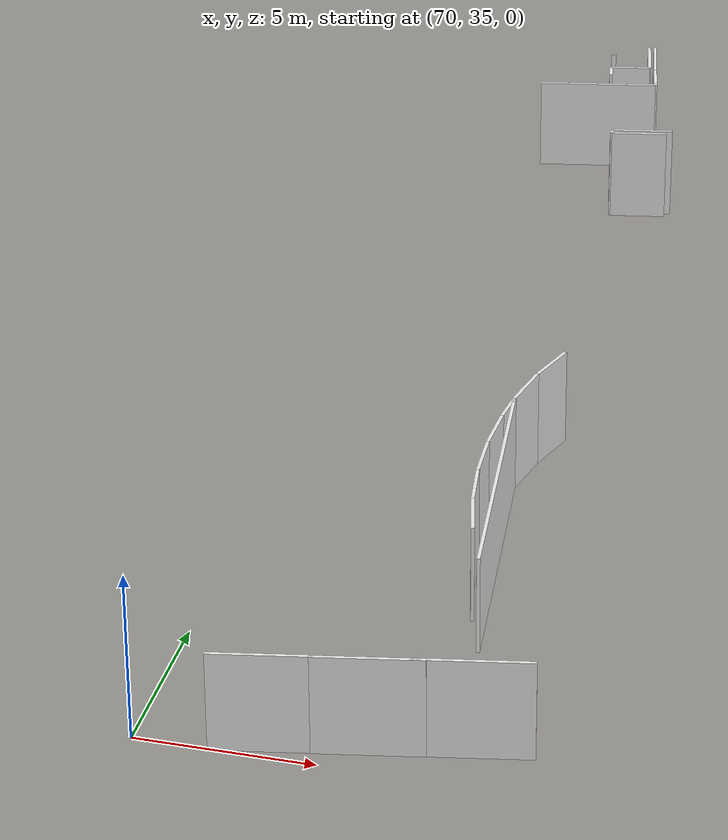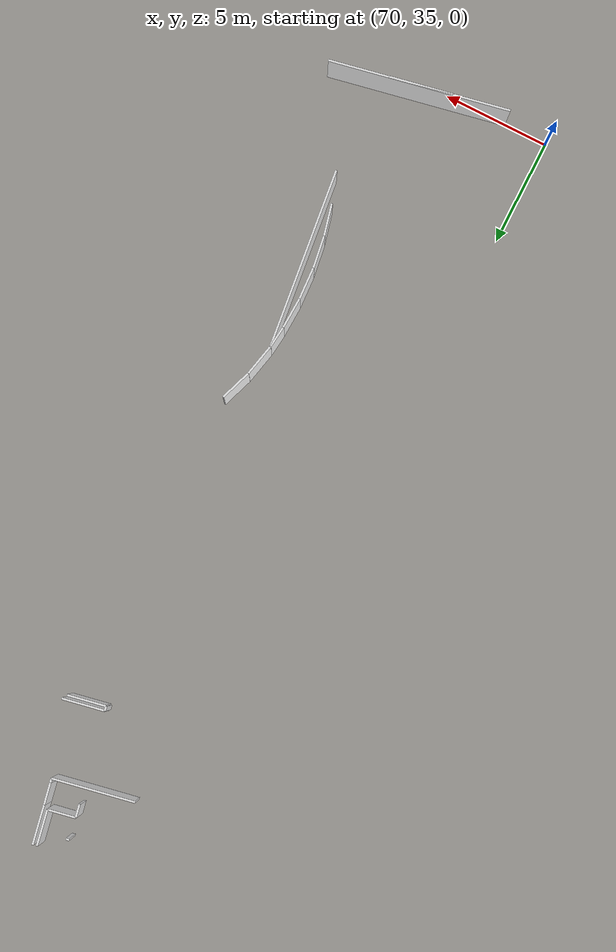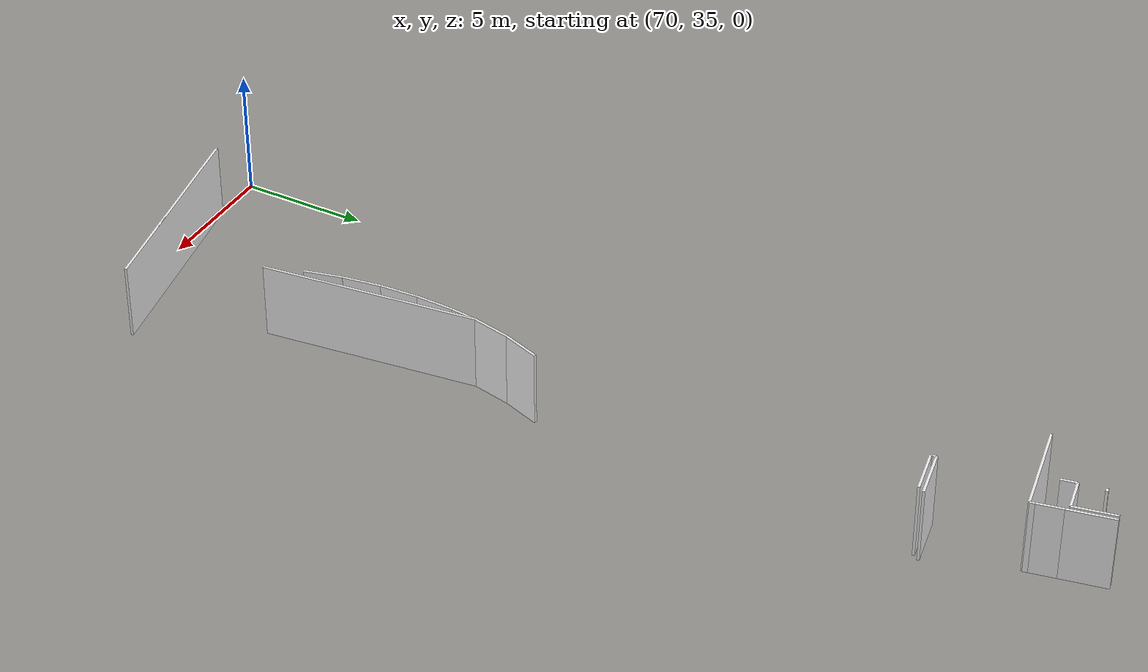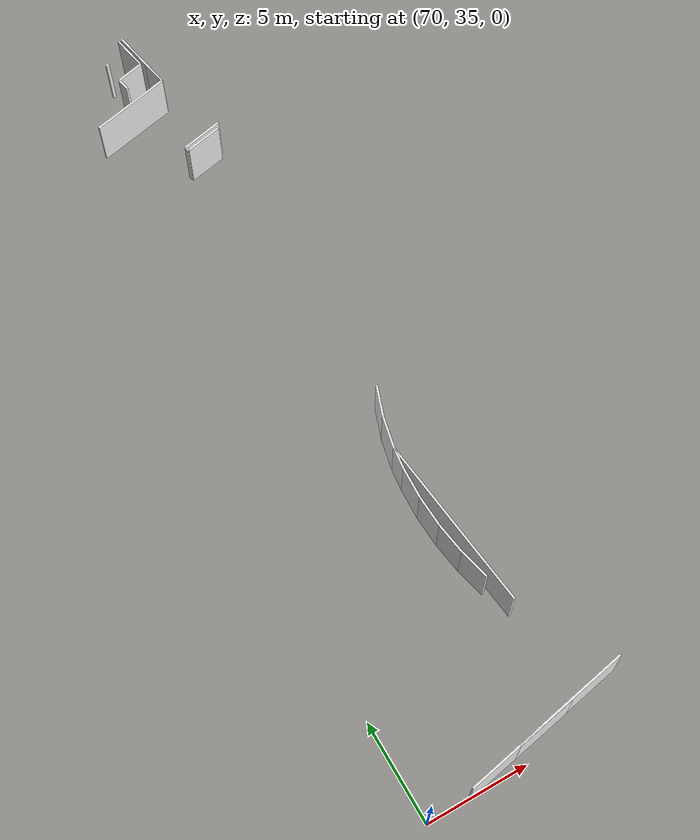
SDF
<sdf version="1.6">
 <world name="default">
  <model name="wall_74.9_72.7_1.5">
   <static>true</static>
   <pose>74.86499999999069 72.69500000006519 1.5 0 0 -2.944197095083166</pose>
   <link name="link">
    <visual name="visual">
     <geometry><box><size>0.15297058539043204 0.1 3</size></box></geometry>
     <material>
      <script><uri>file://media/materials/scripts/gazebo.material</uri><name>Gazebo/White</name></script>
     </material>
    </visual>
    <collision name="collision"><geometry><box><size>0.15297058539043204 0.1 3</size></box></geometry></collision>
   </link>
  </model>
  <model name="wall_75.0_71.4_1.5">
   <static>true</static>
   <pose>75.03999999997905 71.40500000002794 1.5 0 0 1.7714492040023821</pose>
   <link name="link">
    <visual name="visual">
     <geometry><box><size>0.6020797292489833 0.1 3</size></box></geometry>
     <material>
      <script><uri>file://media/materials/scripts/gazebo.material</uri><name>Gazebo/White</name></script>
     </material>
    </visual>
    <collision name="collision"><geometry><box><size>0.6020797292489833 0.1 3</size></box></geometry></collision>
   </link>
  </model>
  <model name="wall_75.6_71.8_1.5">
   <static>true</static>
   <pose>75.61499999999069 71.82500000018626 1.5 0 0 0.1943652660922386</pose>
   <link name="link">
    <visual name="visual">
     <geometry><box><size>1.2943724348298333 0.1 3</size></box></geometry>
     <material>
      <script><uri>file://media/materials/scripts/gazebo.material</uri><name>Gazebo/White</name></script>
     </material>
    </visual>
    <collision name="collision"><geometry><box><size>1.2943724348298333 0.1 3</size></box></geometry></collision>
   </link>
  </model>
  <model name="wall_76.1_72.8_1.5">
   <static>true</static>
   <pose>76.08999999999651 72.75500000012107 1.5 0 0 1.7669971441026713</pose>
   <link name="link">
    <visual name="visual">
     <geometry><box><size>1.6414932225216863 0.1 3</size></box></geometry>
     <material>
      <script><uri>file://media/materials/scripts/gazebo.material</uri><name>Gazebo/White</name></script>
     </material>
    </visual>
    <collision name="collision"><geometry><box><size>1.6414932225216863 0.1 3</size></box></geometry></collision>
   </link>
  </model>
  <model name="wall_76.3_72.7_1.5">
   <static>true</static>
   <pose>76.2949999999837 72.71999999997206 1.5 0 0 -1.374493662723798</pose>
   <link name="link">
    <visual name="visual">
     <geometry><box><size>1.7944637084198858 0.1 3</size></box></geometry>
     <material>
      <script><uri>file://media/materials/scripts/gazebo.material</uri><name>Gazebo/White</name></script>
     </material>
    </visual>
    <collision name="collision"><geometry><box><size>1.7944637084198858 0.1 3</size></box></geometry></collision>
   </link>
  </model>
  <model name="wall_76.6_71.3_1.5">
   <static>true</static>
   <pose>76.56999999997788 71.3499999998603 1.5 0 0 -1.3694792184051279</pose>
   <link name="link">
    <visual name="visual">
     <geometry><box><size>1.0001999799880765 0.1 3</size></box></geometry>
     <material>
      <script><uri>file://media/materials/scripts/gazebo.material</uri><name>Gazebo/White</name></script>
     </material>
    </visual>
    <collision name="collision"><geometry><box><size>1.0001999799880765 0.1 3</size></box></geometry></collision>
   </link>
  </model>
  <model name="wall_76.7_70.8_1.5">
   <static>true</static>
   <pose>76.69000000000233 70.76499999989755 1.5 0 0 -1.3633001001126588</pose>
   <link name="link">
    <visual name="visual">
     <geometry><box><size>0.19416487834246976 0.1 3</size></box></geometry>
     <material>
      <script><uri>file://media/materials/scripts/gazebo.material</uri><name>Gazebo/White</name></script>
     </material>
    </visual>
    <collision name="collision"><geometry><box><size>0.19416487834246976 0.1 3</size></box></geometry></collision>
   </link>
  </model>
  <model name="wall_76.9_67.2_1.5">
   <static>true</static>
   <pose>76.94999999998254 67.18999999994412 1.5 0 0 -2.9481653269346513</pose>
   <link name="link">
    <visual name="visual">
     <geometry><box><size>1.976866206885053 0.1 3</size></box></geometry>
     <material>
      <script><uri>file://media/materials/scripts/gazebo.material</uri><name>Gazebo/White</name></script>
     </material>
    </visual>
    <collision name="collision"><geometry><box><size>1.976866206885053 0.1 3</size></box></geometry></collision>
   </link>
  </model>
  <model name="wall_74.8_70.3_1.5">
   <static>true</static>
   <pose>74.83999999999651 70.30000000004657 1.5 0 0 0.19533794952017633</pose>
   <link name="link">
    <visual name="visual">
     <geometry><box><size>3.8125057377015654 0.1 3</size></box></geometry>
     <material>
      <script><uri>file://media/materials/scripts/gazebo.material</uri><name>Gazebo/White</name></script>
     </material>
    </visual>
    <collision name="collision"><geometry><box><size>3.8125057377015654 0.1 3</size></box></geometry></collision>
   </link>
  </model>
  <model name="wall_76.0_66.9_1.5">
   <static>true</static>
   <pose>76.00500000000466 66.89999999990687 1.5 0 0 -1.3258176636680326</pose>
   <link name="link">
    <visual name="visual">
     <geometry><box><size>0.2061552814728801 0.1 3</size></box></geometry>
     <material>
      <script><uri>file://media/materials/scripts/gazebo.material</uri><name>Gazebo/White</name></script>
     </material>
    </visual>
    <collision name="collision"><geometry><box><size>0.2061552814728801 0.1 3</size></box></geometry></collision>
   </link>
  </model>
  <model name="wall_76.9_67.0_1.5">
   <static>true</static>
   <pose>76.90000000002328 66.96999999997206 1.5 0 0 0.19297081014186676</pose>
   <link name="link">
    <visual name="visual">
     <geometry><box><size>1.77290721702601 0.1 3</size></box></geometry>
     <material>
      <script><uri>file://media/materials/scripts/gazebo.material</uri><name>Gazebo/White</name></script>
     </material>
    </visual>
    <collision name="collision"><geometry><box><size>1.77290721702601 0.1 3</size></box></geometry></collision>
   </link>
  </model>
  <model name="wall_77.4_51.6_1.5">
   <static>true</static>
   <pose>77.40499999999884 51.610000000102445 1.5 0 0 -1.9111782654188452</pose>
   <link name="link">
    <visual name="visual">
     <geometry><box><size>1.527645246707885 0.1 3</size></box></geometry>
     <material>
      <script><uri>file://media/materials/scripts/gazebo.material</uri><name>Gazebo/White</name></script>
     </material>
    </visual>
    <collision name="collision"><geometry><box><size>1.527645246707885 0.1 3</size></box></geometry></collision>
   </link>
  </model>
  <model name="wall_77.0_50.1_1.5">
   <static>true</static>
   <pose>76.98500000001513 50.140000000130385 1.5 0 0 -1.7873466317813498</pose>
   <link name="link">
    <visual name="visual">
     <geometry><box><size>1.5358710883439264 0.1 3</size></box></geometry>
     <material>
      <script><uri>file://media/materials/scripts/gazebo.material</uri><name>Gazebo/White</name></script>
     </material>
    </visual>
    <collision name="collision"><geometry><box><size>1.5358710883439264 0.1 3</size></box></geometry></collision>
   </link>
  </model>
  <model name="wall_76.8_48.9_1.5">
   <static>true</static>
   <pose>76.76000000000931 48.875 1.5 0 0 -1.6867783112416597</pose>
   <link name="link">
    <visual name="visual">
     <geometry><box><size>1.0369667306794703 0.1 3</size></box></geometry>
     <material>
      <script><uri>file://media/materials/scripts/gazebo.material</uri><name>Gazebo/White</name></script>
     </material>
    </visual>
    <collision name="collision"><geometry><box><size>1.0369667306794703 0.1 3</size></box></geometry></collision>
   </link>
  </model>
  <model name="wall_76.7_47.6_1.5">
   <static>true</static>
   <pose>76.6700000000128 47.61499999999069 1.5 0 0 -1.6110430385750105</pose>
   <link name="link">
    <visual name="visual">
     <geometry><box><size>1.4912075641164553 0.1 3</size></box></geometry>
     <material>
      <script><uri>file://media/materials/scripts/gazebo.material</uri><name>Gazebo/White</name></script>
     </material>
    </visual>
    <collision name="collision"><geometry><box><size>1.4912075641164553 0.1 3</size></box></geometry></collision>
   </link>
  </model>
  <model name="wall_76.7_46.1_1.5">
   <static>true</static>
   <pose>76.67999999999302 46.11499999999069 1.5 0 0 -1.5178656809449116</pose>
   <link name="link">
    <visual name="visual">
     <geometry><box><size>1.5121177205246188 0.1 3</size></box></geometry>
     <material>
      <script><uri>file://media/materials/scripts/gazebo.material</uri><name>Gazebo/White</name></script>
     </material>
    </visual>
    <collision name="collision"><geometry><box><size>1.5121177205246188 0.1 3</size></box></geometry></collision>
   </link>
  </model>
  <model name="wall_76.8_44.6_1.5">
   <static>true</static>
   <pose>76.8299999999872 44.609999999869615 1.5 0 0 -1.4251679462043203</pose>
   <link name="link">
    <visual name="visual">
     <geometry><box><size>1.5160474926641705 0.1 3</size></box></geometry>
     <material>
      <script><uri>file://media/materials/scripts/gazebo.material</uri><name>Gazebo/White</name></script>
     </material>
    </visual>
    <collision name="collision"><geometry><box><size>1.5160474926641705 0.1 3</size></box></geometry></collision>
   </link>
  </model>
  <model name="wall_77.1_43.1_1.5">
   <static>true</static>
   <pose>77.11999999999534 43.125 1.5 0 0 -1.3306253189027035</pose>
   <link name="link">
    <visual name="visual">
     <geometry><box><size>1.513439790418924 0.1 3</size></box></geometry>
     <material>
      <script><uri>file://media/materials/scripts/gazebo.material</uri><name>Gazebo/White</name></script>
     </material>
    </visual>
    <collision name="collision"><geometry><box><size>1.513439790418924 0.1 3</size></box></geometry></collision>
   </link>
  </model>
  <model name="wall_76.1_35.8_1.5">
   <static>true</static>
   <pose>76.14999999999418 35.79000000003725 1.5 0 0 -2.9468148887829875</pose>
   <link name="link">
    <visual name="visual">
     <geometry><box><size>2.996664812771044 0.1 3</size></box></geometry>
     <material>
      <script><uri>file://media/materials/scripts/gazebo.material</uri><name>Gazebo/White</name></script>
     </material>
    </visual>
    <collision name="collision"><geometry><box><size>2.996664812771044 0.1 3</size></box></geometry></collision>
   </link>
  </model>
  <model name="wall_76.2_35.8_1.5">
   <static>true</static>
   <pose>76.22000000000116 35.81500000017695 1.5 0 0 0.19577706414235704</pose>
   <link name="link">
    <visual name="visual">
     <geometry><box><size>8.482033954176845 0.1 3</size></box></geometry>
     <material>
      <script><uri>file://media/materials/scripts/gazebo.material</uri><name>Gazebo/White</name></script>
     </material>
    </visual>
    <collision name="collision"><geometry><box><size>8.482033954176845 0.1 3</size></box></geometry></collision>
   </link>
  </model>
  <model name="wall_77.3_45.2_1.5">
   <static>true</static>
   <pose>77.30999999999767 45.175000000046566 1.5 0 0 1.686528325479706</pose>
   <link name="link">
    <visual name="visual">
     <geometry><box><size>8.486772060258827 0.1 3</size></box></geometry>
     <material>
      <script><uri>file://media/materials/scripts/gazebo.material</uri><name>Gazebo/White</name></script>
     </material>
    </visual>
    <collision name="collision"><geometry><box><size>8.486772060258827 0.1 3</size></box></geometry></collision>
   </link>
  </model>
 </world>
</sdf>
